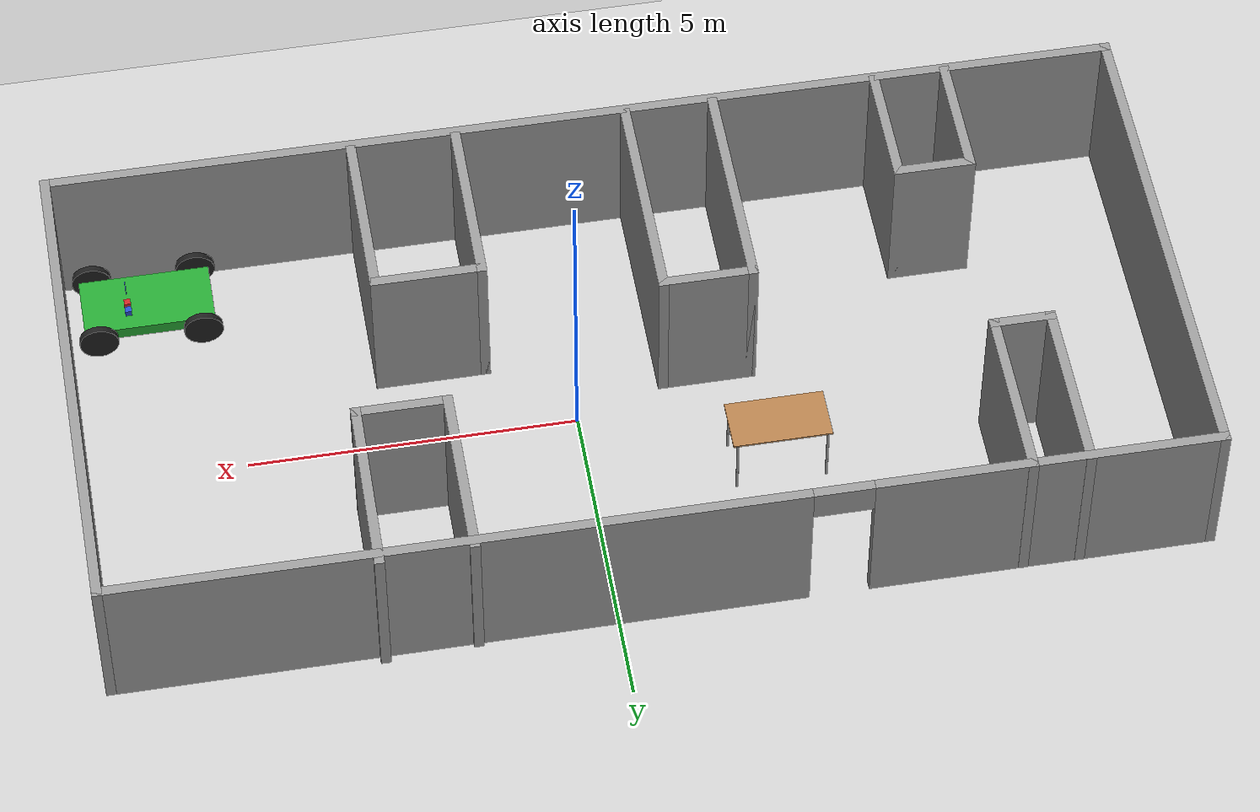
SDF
<sdf version="1.7">
 <world name="default">
  <light name="sun" type="directional">
   <pose>0 0 10 0 -0 0</pose>
   <diffuse>0.8 0.8 0.8 1</diffuse>
   <specular>0.2 0.2 0.2 1</specular>
   <attenuation>
    <range>1000</range>
    <constant>0.9</constant>
    <linear>0.01</linear>
    <quadratic>0.001</quadratic>
   </attenuation>
   <direction>-0.5 0.1 -0.9</direction>
   <spot><inner_angle>0</inner_angle><outer_angle>0</outer_angle><falloff>0</falloff></spot>
  </light>
  <model name="ground_plane">
   <static>1</static>
   <link name="link">
    <collision name="collision">
     <geometry><plane><normal>0 0 1</normal><size>100 100</size></plane></geometry>
     <surface><friction><ode><mu>100</mu><mu2>50</mu2></ode></friction></surface>
    </collision>
    <visual name="visual">
     <cast_shadows>0</cast_shadows>
     <geometry><plane><normal>0 0 1</normal><size>100 100</size></plane></geometry>
     <material>
      <script><uri>file://media/materials/scripts/gazebo.material</uri><name>Gazebo/Grey</name></script>
     </material>
    </visual>
   </link>
  </model>
  <gravity>0 0 -9.8</gravity>
  <magnetic_field>6e-06 2.3e-05 -4.2e-05</magnetic_field>
  <atmosphere type="adiabatic"/>
  <physics type="ode">
   <max_step_size>0.001</max_step_size>
   <real_time_factor>1</real_time_factor>
   <real_time_update_rate>1000</real_time_update_rate>
  </physics>
  <scene><ambient>0.4 0.4 0.4 1</ambient><background>0.7 0.7 0.7 1</background><shadows>1</shadows></scene>
  <audio><device>default</device></audio>
  <spherical_coordinates>
   <surface_model>EARTH_WGS84</surface_model>
   <latitude_deg>0</latitude_deg>
   <longitude_deg>0</longitude_deg>
   <elevation>0</elevation>
   <heading_deg>0</heading_deg>
  </spherical_coordinates>
  <model name="world_one">
   <pose>-0.710399 -0.040368 0 0 -0 0</pose>
   <link name="Wall_14">
    <collision name="Wall_14_Collision">
     <geometry><box><size>7.75 0.15 2.5</size></box></geometry>
     <pose>0 0 1.25 0 -0 0</pose>
    </collision>
    <visual name="Wall_14_Visual">
     <pose>0 0 1.25 0 -0 0</pose>
     <geometry><box><size>7.75 0.15 2.5</size></box></geometry>
     <material>
      <script><uri>file://media/materials/scripts/gazebo.material</uri><name>Gazebo/Grey</name></script>
      <ambient>1 1 1 1</ambient>
     </material>
     <meta><layer>0</layer></meta>
    </visual>
    <pose>-8.175 -0.056586 0 0 -0 -1.5708</pose>
   </link>
   <link name="Wall_16">
    <collision name="Wall_16_Collision">
     <geometry><box><size>2.75 0.15 2.5</size></box></geometry>
     <pose>0 0 1.25 0 -0 0</pose>
    </collision>
    <visual name="Wall_16_Visual">
     <pose>0 0 1.25 0 -0 0</pose>
     <geometry><box><size>2.75 0.15 2.5</size></box></geometry>
     <material>
      <script><uri>file://media/materials/scripts/gazebo.material</uri><name>Gazebo/Grey</name></script>
      <ambient>1 1 1 1</ambient>
     </material>
     <meta><layer>0</layer></meta>
    </visual>
    <pose>-6.18888 2.4473 0 0 -0 -1.5708</pose>
   </link>
   <link name="Wall_17">
    <collision name="Wall_17_Collision">
     <geometry><box><size>1 0.15 2.5</size></box></geometry>
     <pose>0 0 1.25 0 -0 0</pose>
    </collision>
    <visual name="Wall_17_Visual">
     <pose>0 0 1.25 0 -0 0</pose>
     <geometry><box><size>1 0.15 2.5</size></box></geometry>
     <material>
      <script><uri>file://media/materials/scripts/gazebo.material</uri><name>Gazebo/Grey</name></script>
      <ambient>1 1 1 1</ambient>
     </material>
     <meta><layer>0</layer></meta>
    </visual>
    <pose>-5.76388 1.1473 0 0 -0 0</pose>
   </link>
   <link name="Wall_18">
    <collision name="Wall_18_Collision">
     <geometry><box><size>2.75 0.15 2.5</size></box></geometry>
     <pose>0 0 1.25 0 -0 0</pose>
    </collision>
    <visual name="Wall_18_Visual">
     <pose>0 0 1.25 0 -0 0</pose>
     <geometry><box><size>2.75 0.15 2.5</size></box></geometry>
     <material>
      <script><uri>file://media/materials/scripts/gazebo.material</uri><name>Gazebo/Grey</name></script>
      <ambient>1 1 1 1</ambient>
     </material>
     <meta><layer>0</layer></meta>
    </visual>
    <pose>-5.33888 2.4473 0 0 -0 1.5708</pose>
   </link>
   <link name="Wall_2">
    <pose>-0 3.74341 0 0 -0 0</pose>
    <visual name="Wall_2_Visual_0">
     <pose>-5.63563 0 1.25 0 -0 0</pose>
     <geometry><box><size>5.22874 0.15 2.5</size></box></geometry>
     <material>
      <script><uri>file://media/materials/scripts/gazebo.material</uri><name>Gazebo/Grey</name></script>
      <ambient>1 1 1 1</ambient>
     </material>
     <meta><layer>0</layer></meta>
    </visual>
    <collision name="Wall_2_Collision_0">
     <geometry><box><size>5.22874 0.15 2.5</size></box></geometry>
     <pose>-5.63563 0 1.25 0 -0 0</pose>
    </collision>
    <visual name="Wall_2_Visual_1">
     <pose>3.06437 0 1.25 0 -0 0</pose>
     <geometry><box><size>10.3713 0.15 2.5</size></box></geometry>
     <material>
      <script><uri>file://media/materials/scripts/gazebo.material</uri><name>Gazebo/Grey</name></script>
      <ambient>1 1 1 1</ambient>
     </material>
     <meta><layer>0</layer></meta>
    </visual>
    <collision name="Wall_2_Collision_1">
     <geometry><box><size>10.3713 0.15 2.5</size></box></geometry>
     <pose>3.06437 0 1.25 0 -0 0</pose>
    </collision>
    <visual name="Wall_2_Visual_2">
     <pose>-2.57126 0 2.25 0 -0 0</pose>
     <geometry><box><size>0.9 0.15 0.5</size></box></geometry>
     <material>
      <script><uri>file://media/materials/scripts/gazebo.material</uri><name>Gazebo/Grey</name></script>
      <ambient>1 1 1 1</ambient>
     </material>
     <meta><layer>0</layer></meta>
    </visual>
    <collision name="Wall_2_Collision_2">
     <geometry><box><size>0.9 0.15 0.5</size></box></geometry>
     <pose>-2.57126 0 2.25 0 -0 0</pose>
    </collision>
   </link>
   <link name="Wall_20">
    <collision name="Wall_20_Collision">
     <geometry><box><size>2 0.15 2.5</size></box></geometry>
     <pose>0 0 1.25 0 -0 0</pose>
    </collision>
    <visual name="Wall_20_Visual">
     <pose>0 0 1.25 0 -0 0</pose>
     <geometry><box><size>2 0.15 2.5</size></box></geometry>
     <material>
      <script><uri>file://media/materials/scripts/gazebo.material</uri><name>Gazebo/Grey</name></script>
      <ambient>1 1 1 1</ambient>
     </material>
     <meta><layer>0</layer></meta>
    </visual>
    <pose>-5.64099 -2.88449 0 0 -0 1.5708</pose>
   </link>
   <link name="Wall_21">
    <collision name="Wall_21_Collision">
     <geometry><box><size>1.25 0.15 2.5</size></box></geometry>
     <pose>0 0 1.25 0 -0 0</pose>
    </collision>
    <visual name="Wall_21_Visual">
     <pose>0 0 1.25 0 -0 0</pose>
     <geometry><box><size>1.25 0.15 2.5</size></box></geometry>
     <material>
      <script><uri>file://media/materials/scripts/gazebo.material</uri><name>Gazebo/Grey</name></script>
      <ambient>1 1 1 1</ambient>
     </material>
     <meta><layer>0</layer></meta>
    </visual>
    <pose>-5.09099 -1.95949 0 0 -0 0</pose>
   </link>
   <link name="Wall_22">
    <collision name="Wall_22_Collision">
     <geometry><box><size>2 0.15 2.5</size></box></geometry>
     <pose>0 0 1.25 0 -0 0</pose>
    </collision>
    <visual name="Wall_22_Visual">
     <pose>0 0 1.25 0 -0 0</pose>
     <geometry><box><size>2 0.15 2.5</size></box></geometry>
     <material>
      <script><uri>file://media/materials/scripts/gazebo.material</uri><name>Gazebo/Grey</name></script>
      <ambient>1 1 1 1</ambient>
     </material>
     <meta><layer>0</layer></meta>
    </visual>
    <pose>-4.54099 -2.88449 0 0 -0 -1.5708</pose>
   </link>
   <link name="Wall_24">
    <collision name="Wall_24_Collision">
     <geometry><box><size>3.5 0.15 2.5</size></box></geometry>
     <pose>0 0 1.25 0 -0 0</pose>
    </collision>
    <visual name="Wall_24_Visual">
     <pose>0 0 1.25 0 -0 0</pose>
     <geometry><box><size>3.5 0.15 2.5</size></box></geometry>
     <material>
      <script><uri>file://media/materials/scripts/gazebo.material</uri><name>Gazebo/Grey</name></script>
      <ambient>1 1 1 1</ambient>
     </material>
     <meta><layer>0</layer></meta>
    </visual>
    <pose>-2.02336 -2.10789 0 0 -0 1.5708</pose>
   </link>
   <link name="Wall_25">
    <collision name="Wall_25_Collision">
     <geometry><box><size>1.5 0.15 2.5</size></box></geometry>
     <pose>0 0 1.25 0 -0 0</pose>
    </collision>
    <visual name="Wall_25_Visual">
     <pose>0 0 1.25 0 -0 0</pose>
     <geometry><box><size>1.5 0.15 2.5</size></box></geometry>
     <material>
      <script><uri>file://media/materials/scripts/gazebo.material</uri><name>Gazebo/Grey</name></script>
      <ambient>1 1 1 1</ambient>
     </material>
     <meta><layer>0</layer></meta>
    </visual>
    <pose>-1.34836 -0.432891 0 0 -0 0</pose>
   </link>
   <link name="Wall_26">
    <collision name="Wall_26_Collision">
     <geometry><box><size>3.5 0.15 2.5</size></box></geometry>
     <pose>0 0 1.25 0 -0 0</pose>
    </collision>
    <visual name="Wall_26_Visual">
     <pose>0 0 1.25 0 -0 0</pose>
     <geometry><box><size>3.5 0.15 2.5</size></box></geometry>
     <material>
      <script><uri>file://media/materials/scripts/gazebo.material</uri><name>Gazebo/Grey</name></script>
      <ambient>1 1 1 1</ambient>
     </material>
     <meta><layer>0</layer></meta>
    </visual>
    <pose>-0.673364 -2.10789 0 0 -0 -1.5708</pose>
   </link>
   <link name="Wall_28">
    <collision name="Wall_28_Collision">
     <geometry><box><size>2.75 0.15 2.5</size></box></geometry>
     <pose>0 0 1.25 0 -0 0</pose>
    </collision>
    <visual name="Wall_28_Visual">
     <pose>0 0 1.25 0 -0 0</pose>
     <geometry><box><size>2.75 0.15 2.5</size></box></geometry>
     <material>
      <script><uri>file://media/materials/scripts/gazebo.material</uri><name>Gazebo/Grey</name></script>
      <ambient>1 1 1 1</ambient>
     </material>
     <meta><layer>0</layer></meta>
    </visual>
    <pose>1.94007 -2.45629 0 0 -0 1.5708</pose>
   </link>
   <link name="Wall_29">
    <collision name="Wall_29_Collision">
     <geometry><box><size>1.75 0.15 2.5</size></box></geometry>
     <pose>0 0 1.25 0 -0 0</pose>
    </collision>
    <visual name="Wall_29_Visual">
     <pose>0 0 1.25 0 -0 0</pose>
     <geometry><box><size>1.75 0.15 2.5</size></box></geometry>
     <material>
      <script><uri>file://media/materials/scripts/gazebo.material</uri><name>Gazebo/Grey</name></script>
      <ambient>1 1 1 1</ambient>
     </material>
     <meta><layer>0</layer></meta>
    </visual>
    <pose>2.74006 -1.15629 0 0 -0 0</pose>
   </link>
   <link name="Wall_3">
    <collision name="Wall_3_Collision">
     <geometry><box><size>7.75 0.15 2.5</size></box></geometry>
     <pose>0 0 1.25 0 -0 0</pose>
    </collision>
    <visual name="Wall_3_Visual">
     <pose>0 0 1.25 0 -0 0</pose>
     <geometry><box><size>7.75 0.15 2.5</size></box></geometry>
     <material>
      <script><uri>file://media/materials/scripts/gazebo.material</uri><name>Gazebo/Grey</name></script>
      <ambient>1 1 1 1</ambient>
     </material>
     <meta><layer>0</layer></meta>
    </visual>
    <pose>8.175 -0.056586 0 0 -0 -1.5708</pose>
   </link>
   <link name="Wall_30">
    <collision name="Wall_30_Collision">
     <geometry><box><size>2.75 0.15 2.5</size></box></geometry>
     <pose>0 0 1.25 0 -0 0</pose>
    </collision>
    <visual name="Wall_30_Visual">
     <pose>0 0 1.25 0 -0 0</pose>
     <geometry><box><size>2.75 0.15 2.5</size></box></geometry>
     <material>
      <script><uri>file://media/materials/scripts/gazebo.material</uri><name>Gazebo/Grey</name></script>
      <ambient>1 1 1 1</ambient>
     </material>
     <meta><layer>0</layer></meta>
    </visual>
    <pose>3.54006 -2.45629 0 0 -0 -1.5708</pose>
   </link>
   <link name="Wall_33">
    <collision name="Wall_33_Collision">
     <geometry><box><size>1.5 0.15 2.5</size></box></geometry>
     <pose>0 0 1.25 0 -0 0</pose>
    </collision>
    <visual name="Wall_33_Visual">
     <pose>0 0 1.25 0 -0 0</pose>
     <geometry><box><size>1.5 0.15 2.5</size></box></geometry>
     <material>
      <script><uri>file://media/materials/scripts/gazebo.material</uri><name>Gazebo/Grey</name></script>
      <ambient>1 1 1 1</ambient>
     </material>
     <meta><layer>0</layer></meta>
    </visual>
    <pose>3.46627 1.19817 0 0 -0 0</pose>
   </link>
   <link name="Wall_38">
    <collision name="Wall_38_Collision">
     <geometry><box><size>2.75 0.15 2.5</size></box></geometry>
     <pose>0 0 1.25 0 -0 0</pose>
    </collision>
    <visual name="Wall_38_Visual">
     <pose>0 0 1.25 0 -0 0</pose>
     <geometry><box><size>2.75 0.15 2.5</size></box></geometry>
     <material>
      <script><uri>file://media/materials/scripts/gazebo.material</uri><name>Gazebo/Grey</name></script>
      <ambient>1 1 1 1</ambient>
     </material>
     <meta><layer>0</layer></meta>
    </visual>
    <pose>2.79127 2.49817 0 0 -0 1.5708</pose>
   </link>
   <link name="Wall_4">
    <collision name="Wall_4_Collision">
     <geometry><box><size>16.5 0.15 2.5</size></box></geometry>
     <pose>0 0 1.25 0 -0 0</pose>
    </collision>
    <visual name="Wall_4_Visual">
     <pose>0 0 1.25 0 -0 0</pose>
     <geometry><box><size>16.5 0.15 2.5</size></box></geometry>
     <material>
      <script><uri>file://media/materials/scripts/gazebo.material</uri><name>Gazebo/Grey</name></script>
      <ambient>1 1 1 1</ambient>
     </material>
     <meta><layer>0</layer></meta>
    </visual>
    <pose>-0 -3.85659 0 0 -0 3.14159</pose>
   </link>
   <link name="Wall_40">
    <collision name="Wall_40_Collision">
     <geometry><box><size>2.80777 0.15 2.5</size></box></geometry>
     <pose>0 0 1.25 0 -0 0</pose>
    </collision>
    <visual name="Wall_40_Visual">
     <pose>0 0 1.25 0 -0 0</pose>
     <geometry><box><size>2.80777 0.15 2.5</size></box></geometry>
     <material>
      <script><uri>file://media/materials/scripts/gazebo.material</uri><name>Gazebo/Grey</name></script>
      <ambient>1 1 1 1</ambient>
     </material>
     <meta><layer>0</layer></meta>
    </visual>
    <pose>4.15566 2.52697 0 0 -0 -1.58162</pose>
   </link>
   <static>1</static>
  </model>
  <model name="table">
   <static>1</static>
   <link name="link">
    <collision name="surface">
     <pose>0 0 1 0 -0 0</pose>
     <geometry><box><size>1.5 0.8 0.03</size></box></geometry>
     <surface><friction><ode><mu>0.6</mu><mu2>0.6</mu2></ode></friction></surface>
    </collision>
    <visual name="visual1">
     <pose>0 0 1 0 -0 0</pose>
     <geometry><box><size>1.5 0.8 0.03</size></box></geometry>
     <material>
      <script><uri>file://media/materials/scripts/gazebo.material</uri><name>Gazebo/Wood</name></script>
     </material>
    </visual>
    <collision name="front_left_leg">
     <pose>0.68 0.38 0.5 0 -0 0</pose>
     <geometry><cylinder><radius>0.02</radius><length>1</length></cylinder></geometry>
    </collision>
    <visual name="front_left_leg">
     <pose>0.68 0.38 0.5 0 -0 0</pose>
     <geometry><cylinder><radius>0.02</radius><length>1</length></cylinder></geometry>
     <material>
      <script><uri>file://media/materials/scripts/gazebo.material</uri><name>Gazebo/Grey</name></script>
     </material>
    </visual>
    <collision name="front_right_leg">
     <pose>0.68 -0.38 0.5 0 -0 0</pose>
     <geometry><cylinder><radius>0.02</radius><length>1</length></cylinder></geometry>
    </collision>
    <visual name="front_right_leg">
     <pose>0.68 -0.38 0.5 0 -0 0</pose>
     <geometry><cylinder><radius>0.02</radius><length>1</length></cylinder></geometry>
     <material>
      <script><uri>file://media/materials/scripts/gazebo.material</uri><name>Gazebo/Grey</name></script>
     </material>
    </visual>
    <collision name="back_right_leg">
     <pose>-0.68 -0.38 0.5 0 -0 0</pose>
     <geometry><cylinder><radius>0.02</radius><length>1</length></cylinder></geometry>
    </collision>
    <visual name="back_right_leg">
     <pose>-0.68 -0.38 0.5 0 -0 0</pose>
     <geometry><cylinder><radius>0.02</radius><length>1</length></cylinder></geometry>
     <material>
      <script><uri>file://media/materials/scripts/gazebo.material</uri><name>Gazebo/Grey</name></script>
     </material>
    </visual>
    <collision name="back_left_leg">
     <pose>-0.68 0.38 0.5 0 -0 0</pose>
     <geometry><cylinder><radius>0.02</radius><length>1</length></cylinder></geometry>
    </collision>
    <visual name="back_left_leg">
     <pose>-0.68 0.38 0.5 0 -0 0</pose>
     <geometry><cylinder><radius>0.02</radius><length>1</length></cylinder></geometry>
     <material>
      <script><uri>file://media/materials/scripts/gazebo.material</uri><name>Gazebo/Grey</name></script>
     </material>
    </visual>
   </link>
   <pose>-2.83577 1.21544 0 0 -0 0</pose>
  </model>
  <model name="car">
   <link name="chassis">
    <pose>0 0 0.3 0 -0 0</pose>
    <collision name="collision"><geometry><box><size>2 1 0.2</size></box></geometry></collision>
    <visual name="visual">
     <geometry><box><size>2 1 0.2</size></box></geometry>
     <material>
      <script><uri>file://media/materials/scripts/gazebo.material</uri><name>Gazebo/Green</name></script>
     </material>
    </visual>
    <inertial>
     <inertia><ixx>1</ixx><ixy>0</ixy><ixz>0</ixz><iyy>1</iyy><iyz>0</iyz><izz>1</izz></inertia>
     <mass>1</mass>
    </inertial>
   </link>
   <link name="front_left_wheel">
    <pose>0.8 0.6 0.3 -0 1.5707 1.5707</pose>
    <collision name="collision">
     <geometry><cylinder><radius>0.3</radius><length>0.1</length></cylinder></geometry>
    </collision>
    <visual name="visual">
     <geometry><cylinder><radius>0.3</radius><length>0.1</length></cylinder></geometry>
     <material>
      <script><uri>file://media/materials/scripts/gazebo.material</uri><name>Gazebo/Black</name></script>
     </material>
    </visual>
    <inertial>
     <inertia><ixx>1</ixx><ixy>0</ixy><ixz>0</ixz><iyy>1</iyy><iyz>0</iyz><izz>1</izz></inertia>
     <mass>1</mass>
    </inertial>
   </link>
   <link name="front_right_wheel">
    <pose>0.8 -0.6 0.3 -0 1.5707 1.5707</pose>
    <collision name="collision">
     <geometry><cylinder><radius>0.3</radius><length>0.1</length></cylinder></geometry>
    </collision>
    <visual name="visual">
     <geometry><cylinder><radius>0.3</radius><length>0.1</length></cylinder></geometry>
     <material>
      <script><uri>file://media/materials/scripts/gazebo.material</uri><name>Gazebo/Black</name></script>
     </material>
    </visual>
    <inertial>
     <inertia><ixx>1</ixx><ixy>0</ixy><ixz>0</ixz><iyy>1</iyy><iyz>0</iyz><izz>1</izz></inertia>
     <mass>1</mass>
    </inertial>
   </link>
   <link name="back_right_wheel">
    <pose>-0.8 -0.6 0.3 -0 1.5707 1.5707</pose>
    <collision name="collision">
     <geometry><cylinder><radius>0.3</radius><length>0.1</length></cylinder></geometry>
    </collision>
    <visual name="visual">
     <geometry><cylinder><radius>0.3</radius><length>0.1</length></cylinder></geometry>
     <material>
      <script><uri>file://media/materials/scripts/gazebo.material</uri><name>Gazebo/Black</name></script>
     </material>
    </visual>
    <inertial>
     <inertia><ixx>1</ixx><ixy>0</ixy><ixz>0</ixz><iyy>1</iyy><iyz>0</iyz><izz>1</izz></inertia>
     <mass>1</mass>
    </inertial>
   </link>
   <link name="back_left_wheel">
    <pose>-0.8 0.6 0.3 -0 1.5707 1.5707</pose>
    <collision name="collision">
     <geometry><cylinder><radius>0.3</radius><length>0.1</length></cylinder></geometry>
    </collision>
    <visual name="visual">
     <geometry><cylinder><radius>0.3</radius><length>0.1</length></cylinder></geometry>
     <material>
      <script><uri>file://media/materials/scripts/gazebo.material</uri><name>Gazebo/Black</name></script>
     </material>
    </visual>
    <inertial>
     <inertia><ixx>1</ixx><ixy>0</ixy><ixz>0</ixz><iyy>1</iyy><iyz>0</iyz><izz>1</izz></inertia>
     <mass>1</mass>
    </inertial>
   </link>
   <link name="gas_pedal">
    <pose>0.3 0.1 0.5 0 -0 0</pose>
    <collision name="collision"><geometry><box><size>0.1 0.1 0.1</size></box></geometry></collision>
    <visual name="visual">
     <geometry><box><size>0.1 0.1 0.1</size></box></geometry>
     <material>
      <script><uri>file://media/materials/scripts/gazebo.material</uri><name>Gazebo/Red</name></script>
     </material>
    </visual>
    <inertial>
     <inertia><ixx>1</ixx><ixy>0</ixy><ixz>0</ixz><iyy>1</iyy><iyz>0</iyz><izz>1</izz></inertia>
     <mass>1</mass>
    </inertial>
   </link>
   <link name="brake_pedal">
    <pose>0.3 0.25 0.5 0 -0 0</pose>
    <collision name="collision"><geometry><box><size>0.1 0.1 0.1</size></box></geometry></collision>
    <visual name="visual">
     <geometry><box><size>0.1 0.1 0.1</size></box></geometry>
     <material>
      <script><uri>file://media/materials/scripts/gazebo.material</uri><name>Gazebo/Blue</name></script>
     </material>
    </visual>
    <inertial>
     <inertia><ixx>1</ixx><ixy>0</ixy><ixz>0</ixz><iyy>1</iyy><iyz>0</iyz><izz>1</izz></inertia>
     <mass>1</mass>
    </inertial>
   </link>
   <link name="steering_wheel">
    <pose>0.3 0.2 1 0 1.5707 0</pose>
    <collision name="collision">
     <geometry><cylinder><radius>0.1</radius><length>0.01</length></cylinder></geometry>
    </collision>
    <visual name="visual">
     <geometry><cylinder><radius>0.1</radius><length>0.01</length></cylinder></geometry>
     <material>
      <script><uri>file://media/materials/scripts/gazebo.material</uri><name>Gazebo/Blue</name></script>
     </material>
    </visual>
    <inertial>
     <inertia><ixx>1</ixx><ixy>0</ixy><ixz>0</ixz><iyy>1</iyy><iyz>0</iyz><izz>1</izz></inertia>
     <mass>1</mass>
    </inertial>
   </link>
   <joint name="gas_joint" type="prismatic">
    <parent>chassis</parent>
    <child>gas_pedal</child>
    <axis>
     <xyz expressed_in="__model__">1 0 0</xyz>
     <limit><lower>0</lower><upper>0.2</upper></limit>
     <dynamics><spring_reference>0</spring_reference><spring_stiffness>0</spring_stiffness></dynamics>
    </axis>
   </joint>
   <joint name="brake_joint" type="prismatic">
    <parent>chassis</parent>
    <child>brake_pedal</child>
    <axis>
     <xyz expressed_in="__model__">1 0 0</xyz>
     <limit><lower>0</lower><upper>0.2</upper></limit>
     <dynamics><spring_reference>0</spring_reference><spring_stiffness>0</spring_stiffness></dynamics>
    </axis>
   </joint>
   <joint name="steering_joint" type="revolute">
    <parent>chassis</parent>
    <child>steering_wheel</child>
    <axis>
     <xyz expressed_in="__model__">1 0 0</xyz>
     <limit><lower>-7.853</lower><upper>7.853</upper></limit>
     <dynamics><spring_reference>0</spring_reference><spring_stiffness>0</spring_stiffness></dynamics>
    </axis>
   </joint>
   <joint name="front_left_joint" type="revolute2">
    <parent>chassis</parent>
    <child>front_left_wheel</child>
    <axis>
     <xyz expressed_in="__model__">0 0 1</xyz>
     <limit><lower>2.79681e-08</lower><upper>2.79681e-08</upper></limit>
     <dynamics><spring_reference>0</spring_reference><spring_stiffness>0</spring_stiffness></dynamics>
    </axis>
    <axis2>
     <xyz expressed_in="__model__">0 1 0</xyz>
     <limit><upper>1e+16</upper><lower>-1e+16</lower></limit>
     <dynamics><spring_reference>0</spring_reference><spring_stiffness>0</spring_stiffness></dynamics>
    </axis2>
    <physics><ode><limit><cfm>0</cfm><erp>0.9</erp></limit></ode></physics>
   </joint>
   <joint name="front_right_joint" type="revolute2">
    <parent>chassis</parent>
    <child>front_right_wheel</child>
    <axis>
     <xyz expressed_in="__model__">0 0 1</xyz>
     <limit><lower>2.79681e-08</lower><upper>2.79681e-08</upper></limit>
     <dynamics><spring_reference>0</spring_reference><spring_stiffness>0</spring_stiffness></dynamics>
    </axis>
    <axis2>
     <xyz expressed_in="__model__">0 1 0</xyz>
     <limit><upper>1e+16</upper><lower>-1e+16</lower></limit>
     <dynamics><spring_reference>0</spring_reference><spring_stiffness>0</spring_stiffness></dynamics>
    </axis2>
    <physics><ode><limit><cfm>0</cfm><erp>0.9</erp></limit></ode></physics>
   </joint>
   <joint name="back_right_joint" type="revolute2">
    <parent>chassis</parent>
    <child>back_right_wheel</child>
    <axis>
     <xyz expressed_in="__model__">0 0 1</xyz>
     <limit><lower>0</lower><upper>0</upper></limit>
     <dynamics><spring_reference>0</spring_reference><spring_stiffness>0</spring_stiffness></dynamics>
    </axis>
    <axis2>
     <xyz expressed_in="__model__">0 1 0</xyz>
     <limit><upper>1e+16</upper><lower>-1e+16</lower></limit>
     <dynamics><spring_reference>0</spring_reference><spring_stiffness>0</spring_stiffness></dynamics>
    </axis2>
    <physics><ode><limit><cfm>0</cfm><erp>0.9</erp></limit></ode></physics>
   </joint>
   <joint name="back_left_joint" type="revolute2">
    <parent>chassis</parent>
    <child>back_left_wheel</child>
    <axis>
     <xyz expressed_in="__model__">0 0 1</xyz>
     <limit><lower>0</lower><upper>0</upper></limit>
     <dynamics><spring_reference>0</spring_reference><spring_stiffness>0</spring_stiffness></dynamics>
    </axis>
    <axis2>
     <xyz expressed_in="__model__">0 1 0</xyz>
     <limit><upper>1e+16</upper><lower>-1e+16</lower></limit>
     <dynamics><spring_reference>0</spring_reference><spring_stiffness>0</spring_stiffness></dynamics>
    </axis2>
    <physics><ode><limit><cfm>0</cfm><erp>0.9</erp></limit></ode></physics>
   </joint>
   <plugin name="vehicle" filename="libVehiclePlugin.so">
    <front_left>front_left_joint</front_left>
    <front_right>front_right_joint</front_right>
    <back_left>back_left_joint</back_left>
    <back_right>back_right_joint</back_right>
    <gas>gas_joint</gas>
    <brake>brake_joint</brake>
    <steering>steering_joint</steering>
    <front_power>10</front_power>
    <rear_power>10</rear_power>
    <tire_angle_range>0.5</tire_angle_range>
    <max_speed>10</max_speed>
    <aero_load>0.1</aero_load>
   </plugin>
   <pose>6.17071 -3.10208 5e-06 0 -0 3e-06</pose>
  </model>
  <model name="bookshelf">
   <static>1</static>
   <link name="link">
    <inertial><mass>1</mass></inertial>
    <collision name="back">
     <pose>0 0.005 0.6 0 -0 0</pose>
     <geometry><box><size>0.9 0.01 1.2</size></box></geometry>
    </collision>
    <visual name="visual1">
     <pose>0 0.005 0.6 0 -0 0</pose>
     <geometry><box><size>0.9 0.01 1.2</size></box></geometry>
     <material>
      <script><uri>file://media/materials/scripts/gazebo.material</uri><name>Gazebo/Wood</name></script>
     </material>
    </visual>
    <collision name="left_side">
     <pose>0.45 -0.195 0.6 0 -0 0</pose>
     <geometry><box><size>0.02 0.4 1.2</size></box></geometry>
    </collision>
    <visual name="visual2">
     <pose>0.45 -0.195 0.6 0 -0 0</pose>
     <geometry><box><size>0.02 0.4 1.2</size></box></geometry>
     <material>
      <script><uri>file://media/materials/scripts/gazebo.material</uri><name>Gazebo/Wood</name></script>
     </material>
    </visual>
    <collision name="right_side">
     <pose>-0.45 -0.195 0.6 0 -0 0</pose>
     <geometry><box><size>0.02 0.4 1.2</size></box></geometry>
    </collision>
    <visual name="visual3">
     <pose>-0.45 -0.195 0.6 0 -0 0</pose>
     <geometry><box><size>0.02 0.4 1.2</size></box></geometry>
     <material>
      <script><uri>file://media/materials/scripts/gazebo.material</uri><name>Gazebo/Wood</name></script>
     </material>
    </visual>
    <collision name="bottom">
     <pose>0 -0.195 0.03 0 -0 0</pose>
     <geometry><box><size>0.88 0.4 0.06</size></box></geometry>
    </collision>
    <visual name="visual4">
     <pose>0 -0.195 0.03 0 -0 0</pose>
     <geometry><box><size>0.88 0.4 0.06</size></box></geometry>
     <material>
      <script><uri>file://media/materials/scripts/gazebo.material</uri><name>Gazebo/Wood</name></script>
     </material>
    </visual>
    <collision name="top">
     <pose>0 -0.195 1.19 0 -0 0</pose>
     <geometry><box><size>0.88 0.4 0.02</size></box></geometry>
    </collision>
    <visual name="visual5">
     <pose>0 -0.195 1.19 0 -0 0</pose>
     <geometry><box><size>0.88 0.4 0.02</size></box></geometry>
     <material>
      <script><uri>file://media/materials/scripts/gazebo.material</uri><name>Gazebo/Wood</name></script>
     </material>
    </visual>
    <collision name="low_shelf">
     <pose>0 -0.195 0.43 0 -0 0</pose>
     <geometry><box><size>0.88 0.4 0.02</size></box></geometry>
    </collision>
    <visual name="visual6">
     <pose>0 -0.195 0.43 0 -0 0</pose>
     <geometry><box><size>0.88 0.4 0.02</size></box></geometry>
     <material>
      <script><uri>file://media/materials/scripts/gazebo.material</uri><name>Gazebo/Wood</name></script>
     </material>
    </visual>
    <collision name="high_shelf">
     <pose>0 -0.195 0.8 0 -0 0</pose>
     <geometry><box><size>0.88 0.4 0.02</size></box></geometry>
    </collision>
    <visual name="visual7">
     <pose>0 -0.195 0.8 0 -0 0</pose>
     <geometry><box><size>0.88 0.4 0.02</size></box></geometry>
     <material>
      <script><uri>file://media/materials/scripts/gazebo.material</uri><name>Gazebo/Wood</name></script>
     </material>
    </visual>
   </link>
   <pose>4.01787 3.54118 0 0 -0 0</pose>
  </model>
 </world>
</sdf>
